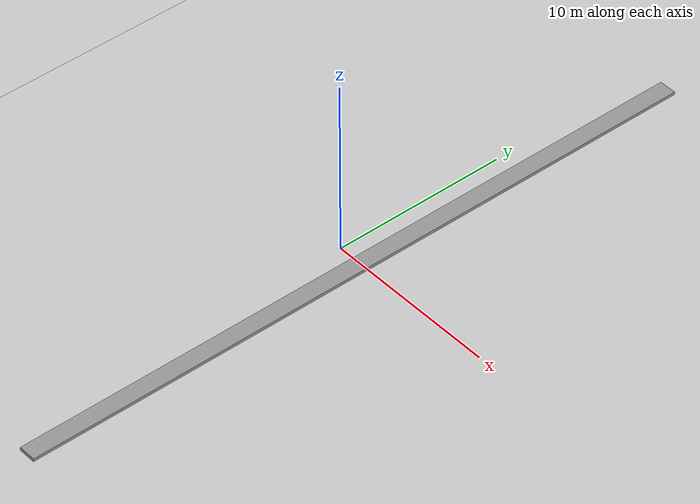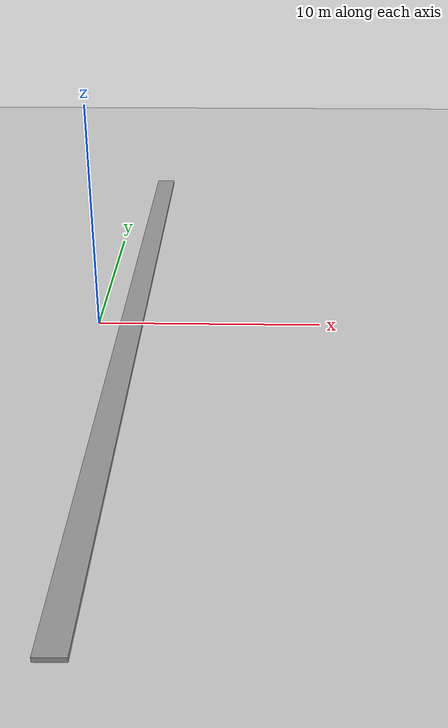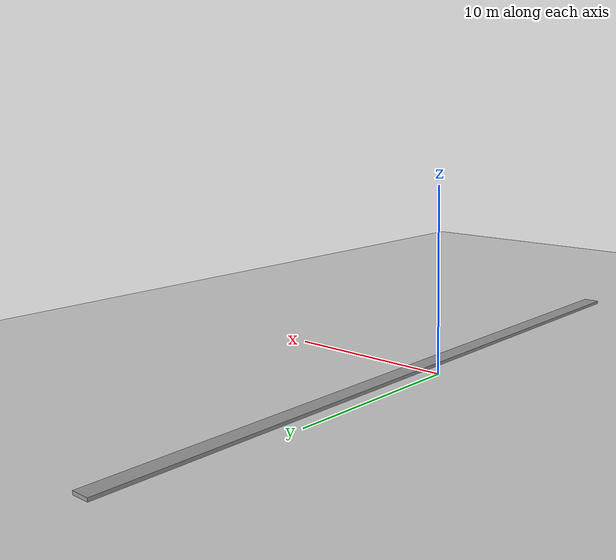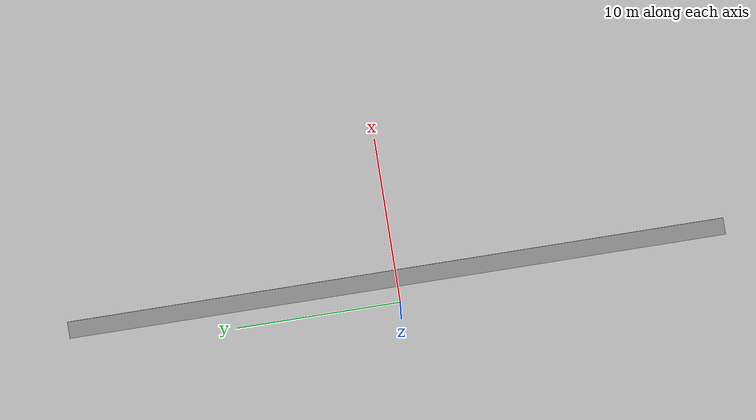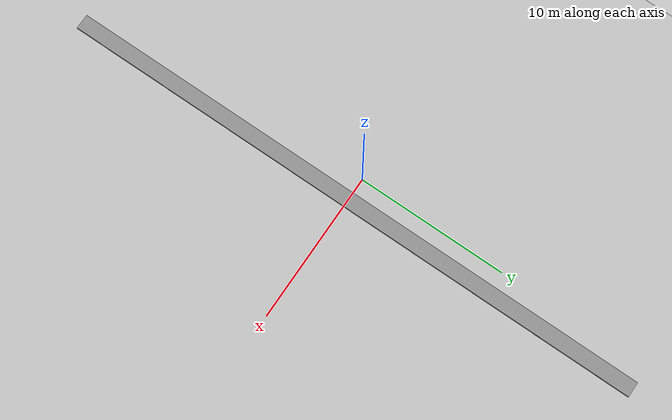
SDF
<sdf version='1.6'>
  <world name='default'>

    <!-- A global light source -->
    <include>
      <uri>model://sun</uri>
    </include>

    <!-- A ground plane -->
    <include>
      <uri>model://ground_plane</uri>
    </include>

    <!-- Custom physics settings -->
    <physics type='ode'>
      <max_step_size>0.0005</max_step_size>
      <real_time_factor>1</real_time_factor>
      <real_time_update_rate>2000</real_time_update_rate>
    </physics>

    <!-- The rocky model -->
    <include>
      <pose>1.5 0 -0.36 0 0 0</pose>
      <uri>model://Step</uri>
    </include>

    <!-- Custom initial camera pose -->
    <gui fullscreen='0'>
      <camera name='user_camera'>
        <pose frame=''>13.5816 -16.4315 9.53389 0 0.395643 1.9842</pose>
        <view_controller>orbit</view_controller>
        <projection_type>perspective</projection_type>
      </camera>
    </gui>

  </world>
</sdf>

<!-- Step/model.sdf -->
<sdf version='1.6'>
  <model name='Step'>
    <link name='link_0'>
      <pose frame=''>0 0 0 0 -0 0</pose>
      <inertial>
        <mass>1</mass>
        <inertia>
          <ixx>0.166667</ixx>
          <ixy>0</ixy>
          <ixz>0</ixz>
          <iyy>0.166667</iyy>
          <iyz>0</iyz>
          <izz>0.166667</izz>
        </inertia>
        <pose frame=''>0 0 0 0 -0 0</pose>
      </inertial>
      <gravity>0</gravity>
      <self_collide>0</self_collide>
      <kinematic>0</kinematic>
      <visual name='visual'>
        <pose frame=''>0 0 0 0 -0 0</pose>
        <geometry>
          <box>
            <size>1 40 1</size>
          </box>
        </geometry>
        <material>
          <lighting>1</lighting>
          <script>
            <uri>file://media/materials/scripts/gazebo.material</uri>
            <name>Gazebo/Grey</name>
          </script>
          <ambient>0.3 0.3 0.3 1</ambient>
          <diffuse>0.7 0.7 0.7 1</diffuse>
          <specular>0.01 0.01 0.01 1</specular>
          <emissive>0 0 0 1</emissive>
          <shader type='vertex'>
            <normal_map>__default__</normal_map>
          </shader>
        </material>
        <cast_shadows>1</cast_shadows>
        <transparency>0</transparency>
      </visual>
      <collision name='collision'>
        <laser_retro>0</laser_retro>
        <max_contacts>10</max_contacts>
        <pose frame=''>0 0 0 0 -0 0</pose>
        <geometry>
          <box>
            <size>1 40 1</size>
          </box>
        </geometry>
        <surface>
          <friction>
            <ode>
              <mu>1</mu>
              <mu2>1</mu2>
              <fdir1>0 0 0</fdir1>
              <slip1>0</slip1>
              <slip2>0</slip2>
            </ode>
            <torsional>
              <coefficient>1</coefficient>
              <patch_radius>0</patch_radius>
              <surface_radius>0</surface_radius>
              <use_patch_radius>1</use_patch_radius>
              <ode>
                <slip>0</slip>
              </ode>
            </torsional>
          </friction>
          <bounce>
            <restitution_coefficient>0</restitution_coefficient>
            <threshold>1e+06</threshold>
          </bounce>
          <contact>
            <collide_without_contact>0</collide_without_contact>
            <collide_without_contact_bitmask>1</collide_without_contact_bitmask>
            <collide_bitmask>1</collide_bitmask>
            <ode>
              <soft_cfm>0</soft_cfm>
              <soft_erp>0.2</soft_erp>
              <kp>1e+13</kp>
              <kd>1</kd>
              <max_vel>0.01</max_vel>
              <min_depth>0</min_depth>
            </ode>
            <bullet>
              <split_impulse>1</split_impulse>
              <split_impulse_penetration_threshold>-0.01</split_impulse_penetration_threshold>
              <soft_cfm>0</soft_cfm>
              <soft_erp>0.2</soft_erp>
              <kp>1e+13</kp>
              <kd>1</kd>
            </bullet>
          </contact>
        </surface>
      </collision>
    </link>
    <static>1</static>
    <allow_auto_disable>1</allow_auto_disable>
  </model>
</sdf>
